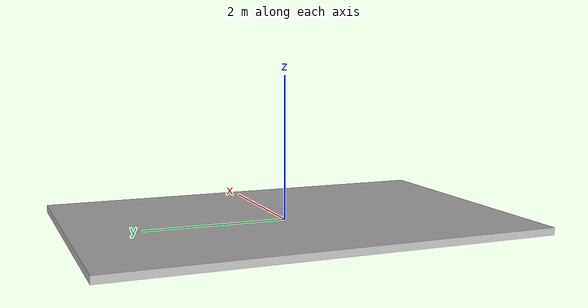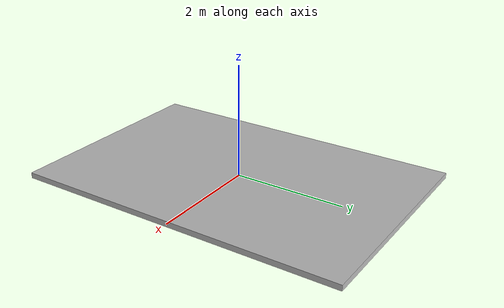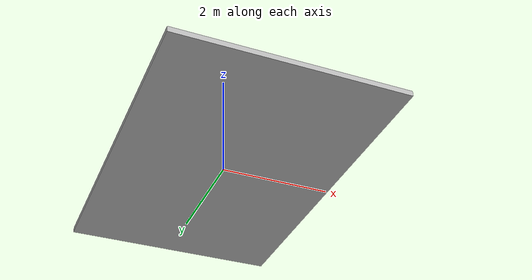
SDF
<?xml version="1.0" ?>
<sdf version="1.5">
  <model name="linoleum_plane">
    <static>false</static>
    <link name="link">
      <collision name="collision">
        <geometry>
          <box>
            <size>4 6 .1</size>
          </box>
        </geometry>
      </collision>
      <visual name="visual">
        <cast_shadows>false</cast_shadows>
        <geometry>
          <box>
            <size>4 6 .1</size>
          </box>
        </geometry>
        <material>
          <script>
            <uri>model://linoleum_plane/materials/scripts</uri>
            <uri>model://linoleum_plane/materials/textures</uri>
            <name>linoleum</name>
          </script>
        </material>
      </visual>
    </link>
  </model>
</sdf>
